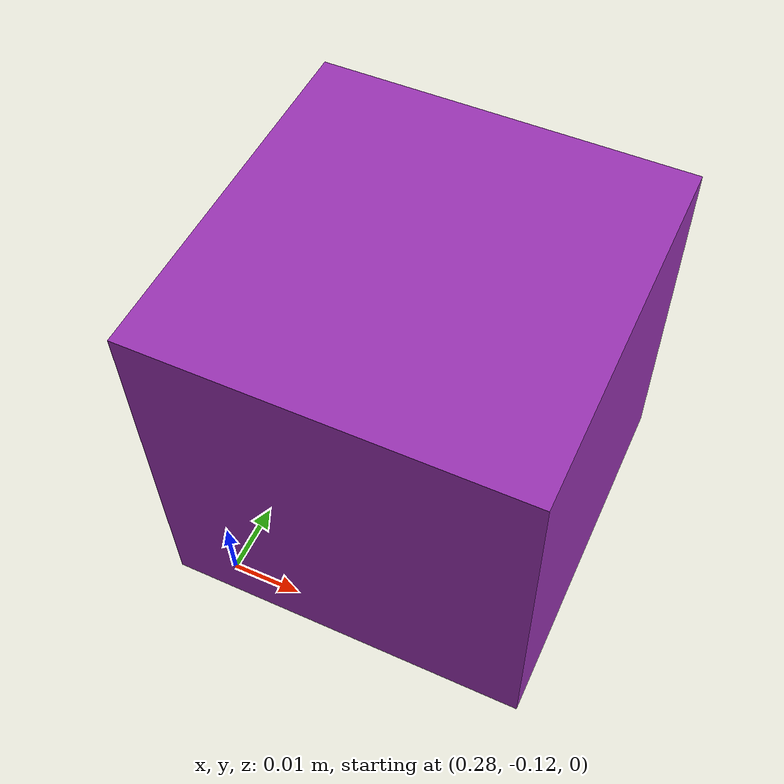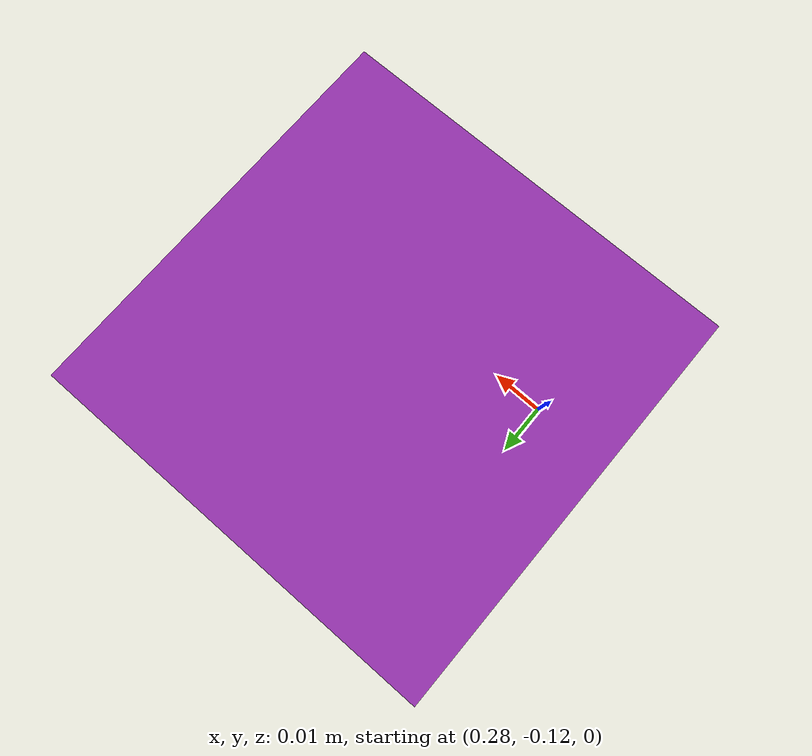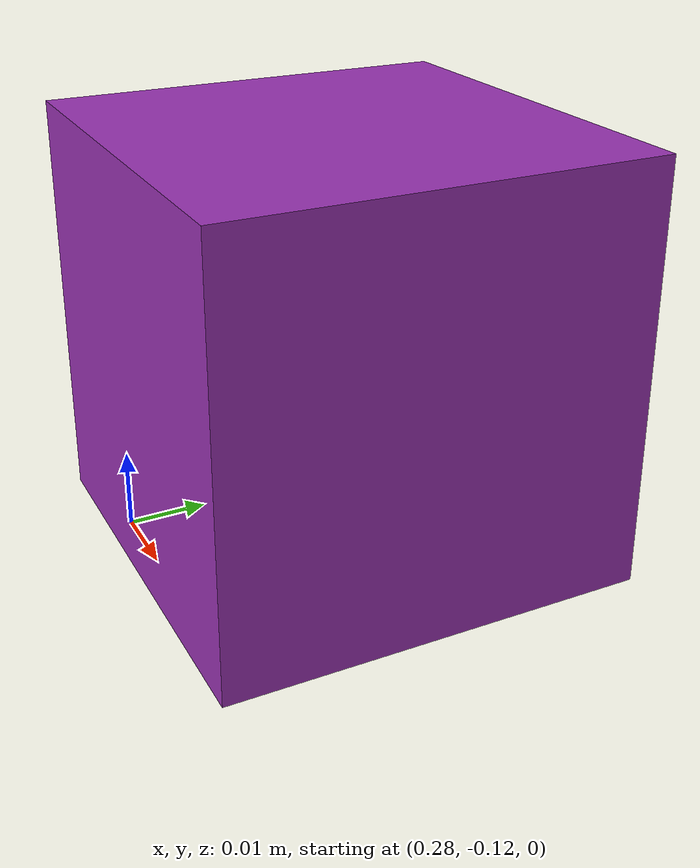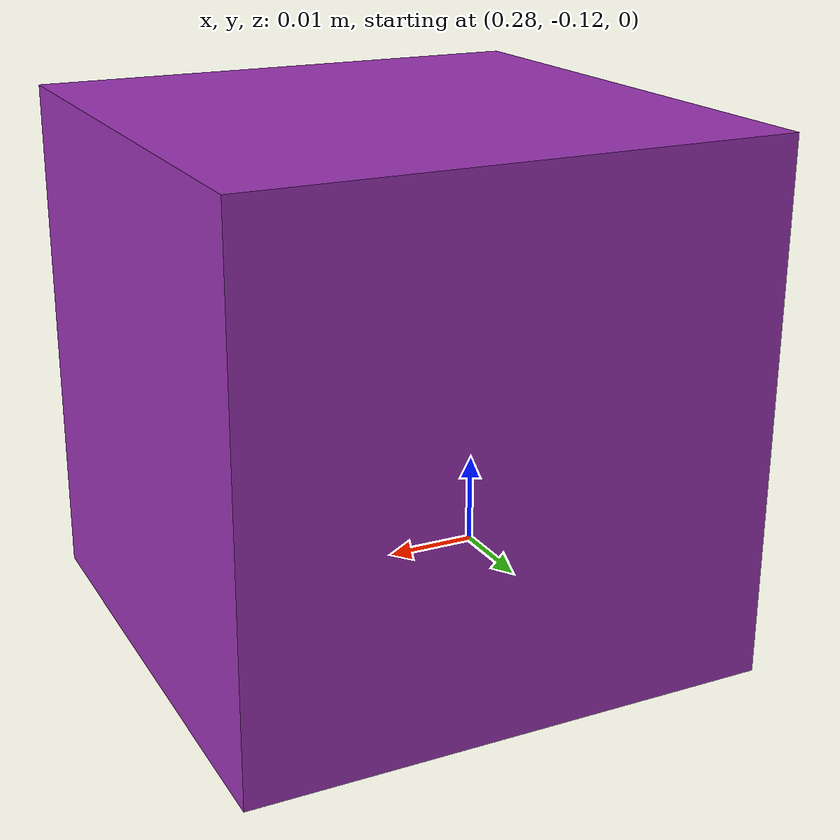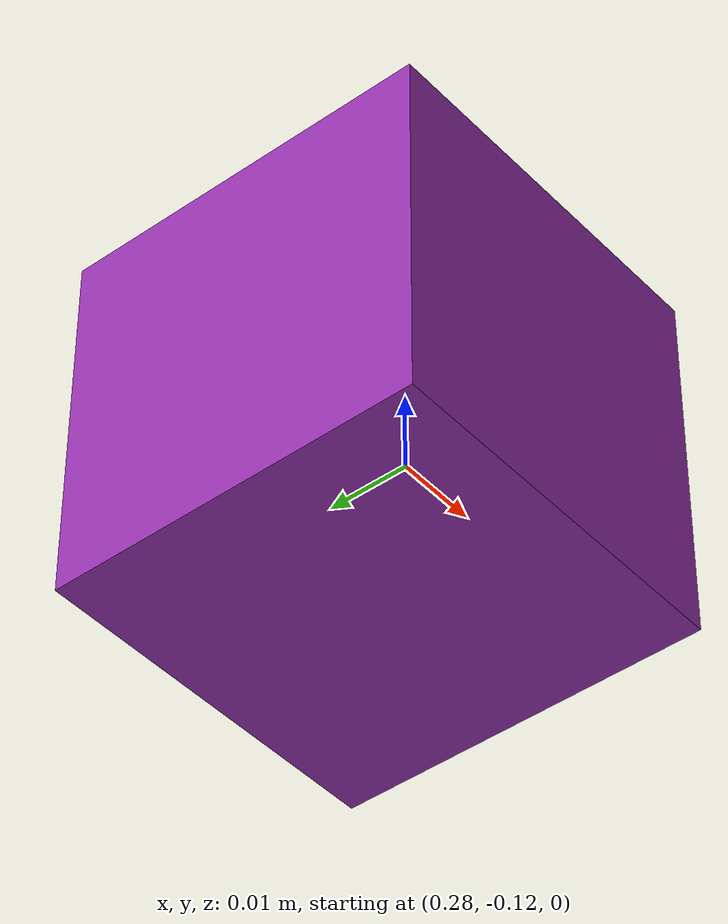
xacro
<?xml version="1.0"?>
<robot name="box">

<link name="base_link">
  <collision>
    <origin xyz="0.3 -0.1 0.03" rpy="0 0 0"/>
    <geometry>
      <box size="0.05 0.05 0.05" />
    </geometry>
  </collision>

  <visual>
    <origin xyz="0.3 -0.1 0.03" rpy="0 0 0"/>
    <geometry>
      <box size="0.05 0.05 0.05" />
    </geometry>
  </visual>

  <inertial>
    <origin xyz="0.3 -0.1 0.03" rpy="0 0 0" />
    <mass value="0.05" />
    <inertia
      ixx="0.05" ixy="0.0"  ixz="0.0"
      iyy="0.05" iyz="0.0"
      izz="0.05" />
  </inertial>
  </link>

<gazebo reference="base_link">
  <material>Gazebo/Purple</material>
    <mu1>5</mu1>
    <mu2>5</mu2>
</gazebo>

</robot>
